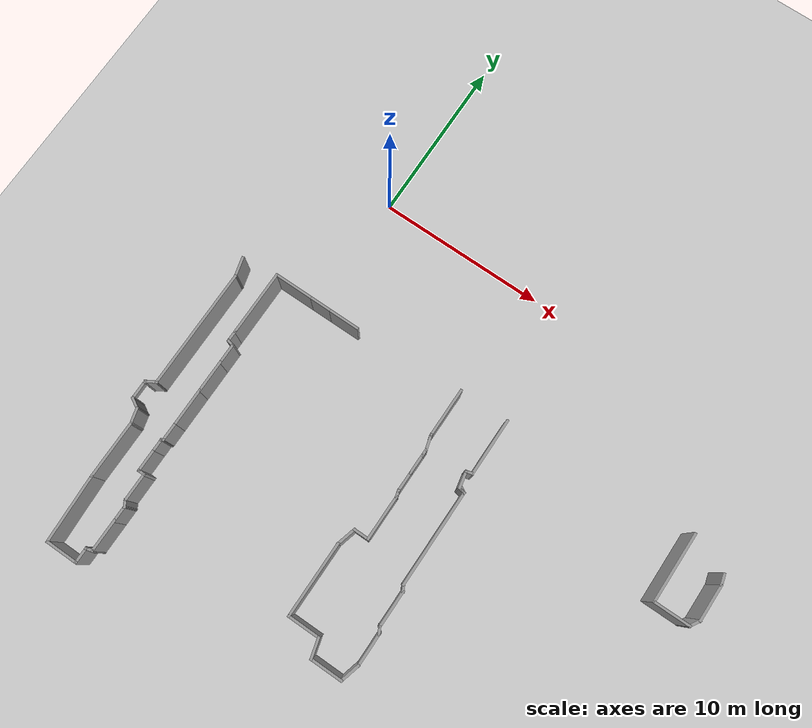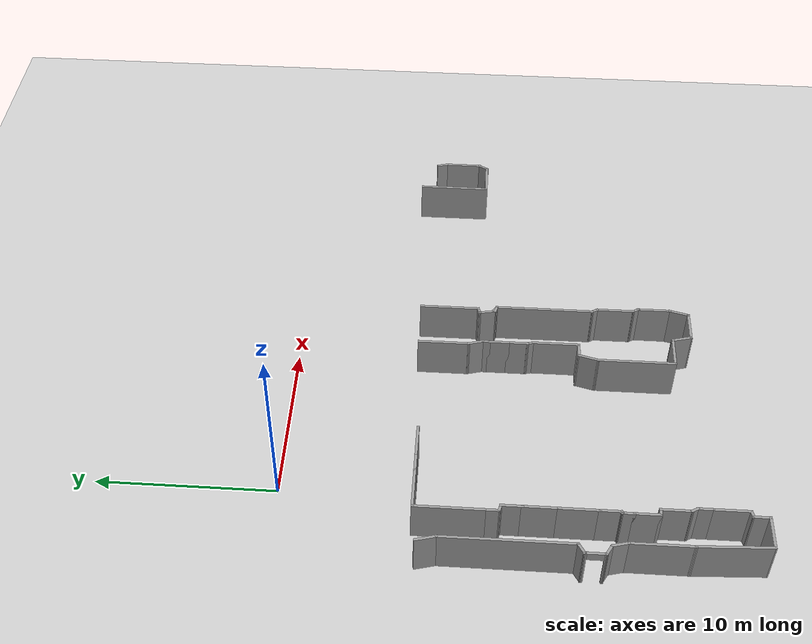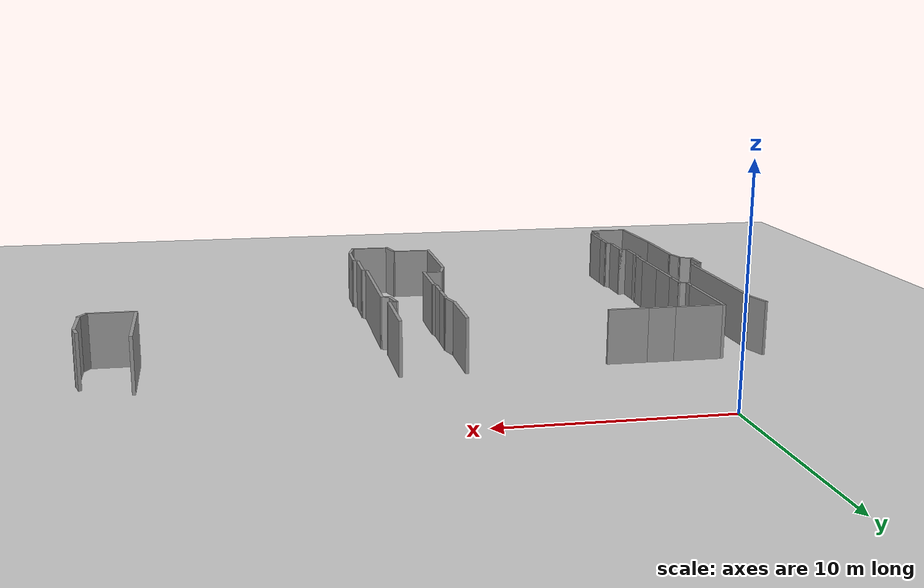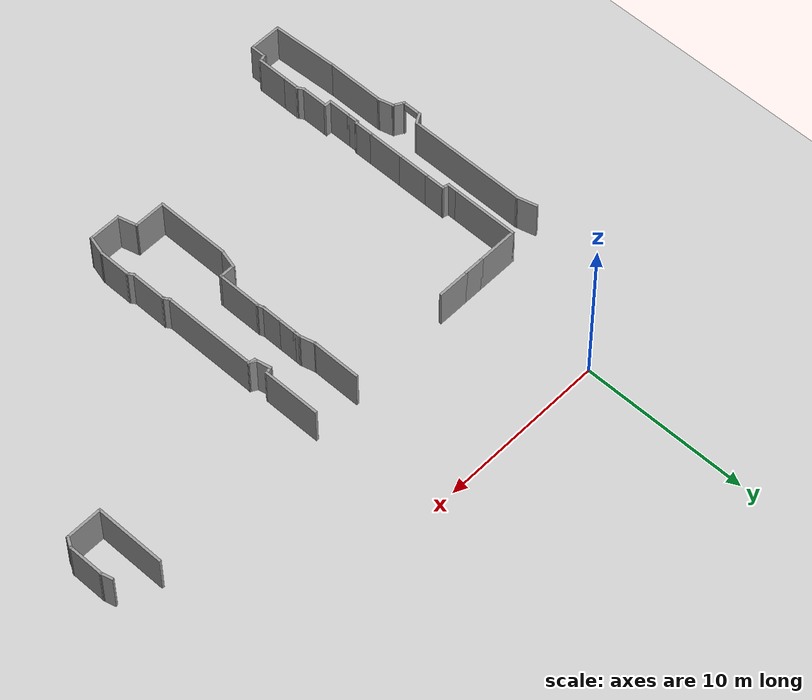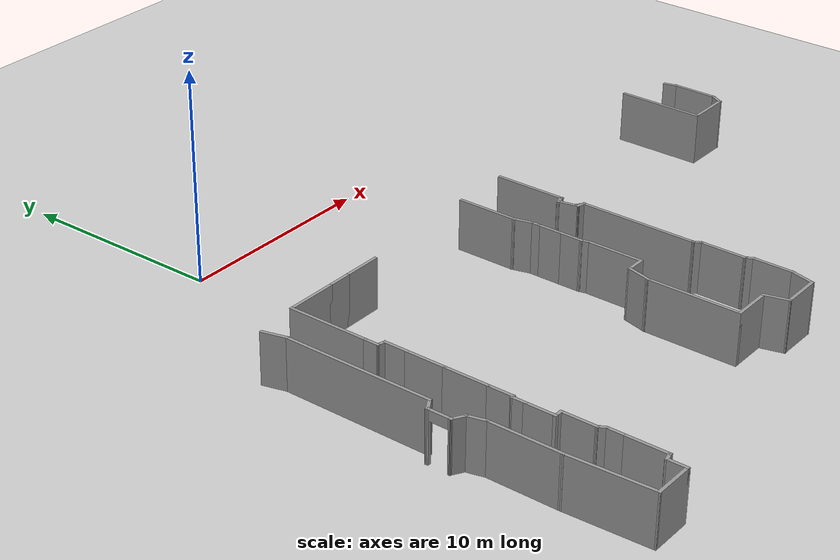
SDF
<sdf version="1.7">
 <world name="default">
  <model name="ground_plane">
   <static>1</static>
   <link name="link">
    <collision name="collision">
     <geometry><plane><normal>0 0 1</normal><size>100 100</size></plane></geometry>
     <surface><friction><ode><mu>100</mu><mu2>50</mu2></ode></friction></surface>
    </collision>
    <visual name="visual">
     <cast_shadows>0</cast_shadows>
     <geometry><plane><normal>0 0 1</normal><size>100 100</size></plane></geometry>
     <material>
      <script><uri>file://media/materials/scripts/gazebo.material</uri><name>Gazebo/Grey</name></script>
     </material>
    </visual>
   </link>
  </model>
  <model name="a10_simulation">
   <pose>8.94312 -0.455858 0 0 -0 0</pose>
   <link name="Wall_0">
    <collision name="Wall_0_Collision">
     <geometry><box><size>2 0.15 2.5</size></box></geometry>
     <pose>0 0 1.25 0 -0 0</pose>
    </collision>
    <visual name="Wall_0_Visual">
     <pose>0 0 1.25 0 -0 0</pose>
     <geometry><box><size>2 0.15 2.5</size></box></geometry>
     <material>
      <script><uri>file://media/materials/scripts/gazebo.material</uri><name>Gazebo/Grey</name></script>
      <ambient>1 1 1 1</ambient>
     </material>
     <meta><layer>0</layer></meta>
    </visual>
    <pose>-11.7781 -25.2008 0 0 -0 0</pose>
   </link>
   <link name="Wall_10">
    <collision name="Wall_10_Collision">
     <geometry><box><size>1.5 0.15 2.5</size></box></geometry>
     <pose>0 0 1.25 0 -0 0</pose>
    </collision>
    <visual name="Wall_10_Visual">
     <pose>0 0 1.25 0 -0 0</pose>
     <geometry><box><size>1.5 0.15 2.5</size></box></geometry>
     <material>
      <script><uri>file://media/materials/scripts/gazebo.material</uri><name>Gazebo/Grey</name></script>
      <ambient>1 1 1 1</ambient>
     </material>
     <meta><layer>0</layer></meta>
    </visual>
    <pose>-11.04 -18.9821 0 0 -0 1.5708</pose>
   </link>
   <link name="Wall_11">
    <collision name="Wall_11_Collision">
     <geometry><box><size>0.75 0.15 2.5</size></box></geometry>
     <pose>0 0 1.25 0 -0 0</pose>
    </collision>
    <visual name="Wall_11_Visual">
     <pose>0 0 1.25 0 -0 0</pose>
     <geometry><box><size>0.75 0.15 2.5</size></box></geometry>
     <material>
      <script><uri>file://media/materials/scripts/gazebo.material</uri><name>Gazebo/Grey</name></script>
      <ambient>1 1 1 1</ambient>
     </material>
     <meta><layer>0</layer></meta>
    </visual>
    <pose>-11.04 -18.0071 0 0 -0 1.5708</pose>
   </link>
   <link name="Wall_12">
    <collision name="Wall_12_Collision">
     <geometry><box><size>0.25 0.15 2.5</size></box></geometry>
     <pose>0 0 1.25 0 -0 0</pose>
    </collision>
    <visual name="Wall_12_Visual">
     <pose>0 0 1.25 0 -0 0</pose>
     <geometry><box><size>0.25 0.15 2.5</size></box></geometry>
     <material>
      <script><uri>file://media/materials/scripts/gazebo.material</uri><name>Gazebo/Grey</name></script>
      <ambient>1 1 1 1</ambient>
     </material>
     <meta><layer>0</layer></meta>
    </visual>
    <pose>-10.9967 -17.6821 0 0 -0 0.523599</pose>
   </link>
   <link name="Wall_13">
    <collision name="Wall_13_Collision">
     <geometry><box><size>1.25 0.15 2.5</size></box></geometry>
     <pose>0 0 1.25 0 -0 0</pose>
    </collision>
    <visual name="Wall_13_Visual">
     <pose>0 0 1.25 0 -0 0</pose>
     <geometry><box><size>1.25 0.15 2.5</size></box></geometry>
     <material>
      <script><uri>file://media/materials/scripts/gazebo.material</uri><name>Gazebo/Grey</name></script>
      <ambient>1 1 1 1</ambient>
     </material>
     <meta><layer>0</layer></meta>
    </visual>
    <pose>-10.9534 -17.1071 0 0 -0 1.5708</pose>
   </link>
   <link name="Wall_14">
    <collision name="Wall_14_Collision">
     <geometry><box><size>2.25 0.15 2.5</size></box></geometry>
     <pose>0 0 1.25 0 -0 0</pose>
    </collision>
    <visual name="Wall_14_Visual">
     <pose>0 0 1.25 0 -0 0</pose>
     <geometry><box><size>2.25 0.15 2.5</size></box></geometry>
     <material>
      <script><uri>file://media/materials/scripts/gazebo.material</uri><name>Gazebo/Grey</name></script>
      <ambient>1 1 1 1</ambient>
     </material>
     <meta><layer>0</layer></meta>
    </visual>
    <pose>-10.9534 -15.5071 0 0 -0 1.5708</pose>
   </link>
   <link name="Wall_16">
    <collision name="Wall_16_Collision">
     <geometry><box><size>2 0.15 2.5</size></box></geometry>
     <pose>0 0 1.25 0 -0 0</pose>
    </collision>
    <visual name="Wall_16_Visual">
     <pose>0 0 1.25 0 -0 0</pose>
     <geometry><box><size>2 0.15 2.5</size></box></geometry>
     <material>
      <script><uri>file://media/materials/scripts/gazebo.material</uri><name>Gazebo/Grey</name></script>
      <ambient>1 1 1 1</ambient>
     </material>
     <meta><layer>0</layer></meta>
    </visual>
    <pose>-10.9534 -13.5321 0 0 -0 1.5708</pose>
   </link>
   <link name="Wall_17">
    <collision name="Wall_17_Collision">
     <geometry><box><size>1.25 0.15 2.5</size></box></geometry>
     <pose>0 0 1.25 0 -0 0</pose>
    </collision>
    <visual name="Wall_17_Visual">
     <pose>0 0 1.25 0 -0 0</pose>
     <geometry><box><size>1.25 0.15 2.5</size></box></geometry>
     <material>
      <script><uri>file://media/materials/scripts/gazebo.material</uri><name>Gazebo/Grey</name></script>
      <ambient>1 1 1 1</ambient>
     </material>
     <meta><layer>0</layer></meta>
    </visual>
    <pose>-10.9534 -12.0571 0 0 -0 1.5708</pose>
   </link>
   <link name="Wall_179">
    <collision name="Wall_179_Collision">
     <geometry><box><size>1.25 0.15 2.5</size></box></geometry>
     <pose>0 0 1.25 0 -0 0</pose>
    </collision>
    <visual name="Wall_179_Visual">
     <pose>0 0 1.25 0 -0 0</pose>
     <geometry><box><size>1.25 0.15 2.5</size></box></geometry>
     <material>
      <script><uri>file://media/materials/scripts/gazebo.material</uri><name>Gazebo/Grey</name></script>
      <ambient>1 1 1 1</ambient>
     </material>
     <meta><layer>0</layer></meta>
    </visual>
    <pose>-13.2533 -7.7619 0 0 -0 -1.309</pose>
   </link>
   <link name="Wall_18">
    <collision name="Wall_18_Collision">
     <geometry><box><size>0.5 0.15 2.5</size></box></geometry>
     <pose>0 0 1.25 0 -0 0</pose>
    </collision>
    <visual name="Wall_18_Visual">
     <pose>0 0 1.25 0 -0 0</pose>
     <geometry><box><size>0.5 0.15 2.5</size></box></geometry>
     <material>
      <script><uri>file://media/materials/scripts/gazebo.material</uri><name>Gazebo/Grey</name></script>
      <ambient>1 1 1 1</ambient>
     </material>
     <meta><layer>0</layer></meta>
    </visual>
    <pose>-11.1225 -11.4618 0 0 -0 2.87979</pose>
   </link>
   <link name="Wall_180">
    <collision name="Wall_180_Collision">
     <geometry><box><size>7.25 0.15 2.5</size></box></geometry>
     <pose>0 0 1.25 0 -0 0</pose>
    </collision>
    <visual name="Wall_180_Visual">
     <pose>0 0 1.25 0 -0 0</pose>
     <geometry><box><size>7.25 0.15 2.5</size></box></geometry>
     <material>
      <script><uri>file://media/materials/scripts/gazebo.material</uri><name>Gazebo/Grey</name></script>
      <ambient>1 1 1 1</ambient>
     </material>
     <meta><layer>0</layer></meta>
    </visual>
    <pose>-13.1109 -11.8432 0 0 -0 -1.5708</pose>
   </link>
   <link name="Wall_181">
    <collision name="Wall_181_Collision">
     <geometry><box><size>0.75 0.15 2.5</size></box></geometry>
     <pose>0 0 1.25 0 -0 0</pose>
    </collision>
    <visual name="Wall_181_Visual">
     <pose>0 0 1.25 0 -0 0</pose>
     <geometry><box><size>0.75 0.15 2.5</size></box></geometry>
     <material>
      <script><uri>file://media/materials/scripts/gazebo.material</uri><name>Gazebo/Grey</name></script>
      <ambient>1 1 1 1</ambient>
     </material>
     <meta><layer>0</layer></meta>
    </visual>
    <pose>-13.3708 -15.5432 0 0 -0 -2.61799</pose>
   </link>
   <link name="Wall_182">
    <pose>-13.6306 -16.2432 0 0 -0 -1.5708</pose>
    <visual name="Wall_182_Visual_0">
     <pose>-0.531769 0 1.25 0 -0 0</pose>
     <geometry><box><size>0.186461 0.15 2.5</size></box></geometry>
     <material>
      <script><uri>file://media/materials/scripts/gazebo.material</uri><name>Gazebo/Grey</name></script>
      <ambient>1 1 1 1</ambient>
     </material>
     <meta><layer>0</layer></meta>
    </visual>
    <collision name="Wall_182_Collision_0">
     <geometry><box><size>0.186461 0.15 2.5</size></box></geometry>
     <pose>-0.531769 0 1.25 0 -0 0</pose>
    </collision>
    <visual name="Wall_182_Visual_1">
     <pose>0.543231 0 1.25 0 -0 0</pose>
     <geometry><box><size>0.163539 0.15 2.5</size></box></geometry>
     <material>
      <script><uri>file://media/materials/scripts/gazebo.material</uri><name>Gazebo/Grey</name></script>
      <ambient>1 1 1 1</ambient>
     </material>
     <meta><layer>0</layer></meta>
    </visual>
    <collision name="Wall_182_Collision_1">
     <geometry><box><size>0.163539 0.15 2.5</size></box></geometry>
     <pose>0.543231 0 1.25 0 -0 0</pose>
    </collision>
    <visual name="Wall_182_Visual_2">
     <pose>0.011461 0 2.25 0 -0 0</pose>
     <geometry><box><size>0.9 0.15 0.5</size></box></geometry>
     <material>
      <script><uri>file://media/materials/scripts/gazebo.material</uri><name>Gazebo/Grey</name></script>
      <ambient>1 1 1 1</ambient>
     </material>
     <meta><layer>0</layer></meta>
    </visual>
    <collision name="Wall_182_Collision_2">
     <geometry><box><size>0.9 0.15 0.5</size></box></geometry>
     <pose>0.011461 0 2.25 0 -0 0</pose>
    </collision>
   </link>
   <link name="Wall_183">
    <collision name="Wall_183_Collision">
     <geometry><box><size>0.75 0.15 2.5</size></box></geometry>
     <pose>0 0 1.25 0 -0 0</pose>
    </collision>
    <visual name="Wall_183_Visual">
     <pose>0 0 1.25 0 -0 0</pose>
     <geometry><box><size>0.75 0.15 2.5</size></box></geometry>
     <material>
      <script><uri>file://media/materials/scripts/gazebo.material</uri><name>Gazebo/Grey</name></script>
      <ambient>1 1 1 1</ambient>
     </material>
     <meta><layer>0</layer></meta>
    </visual>
    <pose>-13.3708 -16.9432 0 0 -0 -0.523599</pose>
   </link>
   <link name="Wall_185">
    <collision name="Wall_185_Collision">
     <geometry><box><size>1 0.15 2.5</size></box></geometry>
     <pose>0 0 1.25 0 -0 0</pose>
    </collision>
    <visual name="Wall_185_Visual">
     <pose>0 0 1.25 0 -0 0</pose>
     <geometry><box><size>1 0.15 2.5</size></box></geometry>
     <material>
      <script><uri>file://media/materials/scripts/gazebo.material</uri><name>Gazebo/Grey</name></script>
      <ambient>1 1 1 1</ambient>
     </material>
     <meta><layer>0</layer></meta>
    </visual>
    <pose>-13.0009 -17.5037 0 0 -0 -1.309</pose>
   </link>
   <link name="Wall_186">
    <collision name="Wall_186_Collision">
     <geometry><box><size>3.5 0.15 2.5</size></box></geometry>
     <pose>0 0 1.25 0 -0 0</pose>
    </collision>
    <visual name="Wall_186_Visual">
     <pose>0 0 1.25 0 -0 0</pose>
     <geometry><box><size>3.5 0.15 2.5</size></box></geometry>
     <material>
      <script><uri>file://media/materials/scripts/gazebo.material</uri><name>Gazebo/Grey</name></script>
      <ambient>1 1 1 1</ambient>
     </material>
     <meta><layer>0</layer></meta>
    </visual>
    <pose>-12.8909 -19.5892 0 0 -0 -1.5708</pose>
   </link>
   <link name="Wall_187">
    <collision name="Wall_187_Collision">
     <geometry><box><size>4.09106 0.15 2.5</size></box></geometry>
     <pose>0 0 1.25 0 -0 0</pose>
    </collision>
    <visual name="Wall_187_Visual">
     <pose>0 0 1.25 0 -0 0</pose>
     <geometry><box><size>4.09106 0.15 2.5</size></box></geometry>
     <material>
      <script><uri>file://media/materials/scripts/gazebo.material</uri><name>Gazebo/Grey</name></script>
      <ambient>1 1 1 1</ambient>
     </material>
     <meta><layer>0</layer></meta>
    </visual>
    <pose>-12.797 -23.2325 0 0 -0 -1.52312</pose>
   </link>
   <link name="Wall_188">
    <collision name="Wall_188_Collision">
     <geometry><box><size>2 0.15 2.5</size></box></geometry>
     <pose>0 0 1.25 0 -0 0</pose>
    </collision>
    <visual name="Wall_188_Visual">
     <pose>0 0 1.25 0 -0 0</pose>
     <geometry><box><size>2 0.15 2.5</size></box></geometry>
     <material>
      <script><uri>file://media/materials/scripts/gazebo.material</uri><name>Gazebo/Grey</name></script>
      <ambient>1 1 1 1</ambient>
     </material>
     <meta><layer>0</layer></meta>
    </visual>
    <pose>-11.7781 -25.2008 0 0 -0 0</pose>
   </link>
   <link name="Wall_19">
    <collision name="Wall_19_Collision">
     <geometry><box><size>0.75 0.15 2.5</size></box></geometry>
     <pose>0 0 1.25 0 -0 0</pose>
    </collision>
    <visual name="Wall_19_Visual">
     <pose>0 0 1.25 0 -0 0</pose>
     <geometry><box><size>0.75 0.15 2.5</size></box></geometry>
     <material>
      <script><uri>file://media/materials/scripts/gazebo.material</uri><name>Gazebo/Grey</name></script>
      <ambient>1 1 1 1</ambient>
     </material>
     <meta><layer>0</layer></meta>
    </visual>
    <pose>-11.2915 -11.1165 0 0 -0 1.5708</pose>
   </link>
   <link name="Wall_2">
    <collision name="Wall_2_Collision">
     <geometry><box><size>1 0.15 2.5</size></box></geometry>
     <pose>0 0 1.25 0 -0 0</pose>
    </collision>
    <visual name="Wall_2_Visual">
     <pose>0 0 1.25 0 -0 0</pose>
     <geometry><box><size>1 0.15 2.5</size></box></geometry>
     <material>
      <script><uri>file://media/materials/scripts/gazebo.material</uri><name>Gazebo/Grey</name></script>
      <ambient>1 1 1 1</ambient>
     </material>
     <meta><layer>0</layer></meta>
    </visual>
    <pose>-10.8531 -24.7758 0 0 -0 1.5708</pose>
   </link>
   <link name="Wall_20">
    <collision name="Wall_20_Collision">
     <geometry><box><size>0.15 0.15 2.5</size></box></geometry>
     <pose>0 0 1.25 0 -0 0</pose>
    </collision>
    <visual name="Wall_20_Visual">
     <pose>0 0 1.25 0 -0 0</pose>
     <geometry><box><size>0.15 0.15 2.5</size></box></geometry>
     <material>
      <script><uri>file://media/materials/scripts/gazebo.material</uri><name>Gazebo/Grey</name></script>
      <ambient>1 1 1 1</ambient>
     </material>
     <meta><layer>0</layer></meta>
    </visual>
    <pose>-11.2915 -10.8165 0 0 -0 0</pose>
   </link>
   <link name="Wall_21">
    <collision name="Wall_21_Collision">
     <geometry><box><size>0.15 0.15 2.5</size></box></geometry>
     <pose>0 0 1.25 0 -0 0</pose>
    </collision>
    <visual name="Wall_21_Visual">
     <pose>0 0 1.25 0 -0 0</pose>
     <geometry><box><size>0.15 0.15 2.5</size></box></geometry>
     <material>
      <script><uri>file://media/materials/scripts/gazebo.material</uri><name>Gazebo/Grey</name></script>
      <ambient>1 1 1 1</ambient>
     </material>
     <meta><layer>0</layer></meta>
    </visual>
    <pose>-11.2915 -10.8165 0 0 -0 0</pose>
   </link>
   <link name="Wall_22">
    <collision name="Wall_22_Collision">
     <geometry><box><size>4 0.15 2.5</size></box></geometry>
     <pose>0 0 1.25 0 -0 0</pose>
    </collision>
    <visual name="Wall_22_Visual">
     <pose>0 0 1.25 0 -0 0</pose>
     <geometry><box><size>4 0.15 2.5</size></box></geometry>
     <material>
      <script><uri>file://media/materials/scripts/gazebo.material</uri><name>Gazebo/Grey</name></script>
      <ambient>1 1 1 1</ambient>
     </material>
     <meta><layer>0</layer></meta>
    </visual>
    <pose>-11.2915 -8.8915 0 0 -0 1.5708</pose>
   </link>
   <link name="Wall_23">
    <collision name="Wall_23_Collision">
     <geometry><box><size>2.5 0.15 2.5</size></box></geometry>
     <pose>0 0 1.25 0 -0 0</pose>
    </collision>
    <visual name="Wall_23_Visual">
     <pose>0 0 1.25 0 -0 0</pose>
     <geometry><box><size>2.5 0.15 2.5</size></box></geometry>
     <material>
      <script><uri>file://media/materials/scripts/gazebo.material</uri><name>Gazebo/Grey</name></script>
      <ambient>1 1 1 1</ambient>
     </material>
     <meta><layer>0</layer></meta>
    </visual>
    <pose>-10.1165 -6.9665 0 0 -0 0</pose>
   </link>
   <link name="Wall_24">
    <collision name="Wall_24_Collision">
     <geometry><box><size>1.25 0.15 2.5</size></box></geometry>
     <pose>0 0 1.25 0 -0 0</pose>
    </collision>
    <visual name="Wall_24_Visual">
     <pose>0 0 1.25 0 -0 0</pose>
     <geometry><box><size>1.25 0.15 2.5</size></box></geometry>
     <material>
      <script><uri>file://media/materials/scripts/gazebo.material</uri><name>Gazebo/Grey</name></script>
      <ambient>1 1 1 1</ambient>
     </material>
     <meta><layer>0</layer></meta>
    </visual>
    <pose>-8.39152 -6.9665 0 0 -0 0</pose>
   </link>
   <link name="Wall_25">
    <collision name="Wall_25_Collision">
     <geometry><box><size>2 0.15 2.5</size></box></geometry>
     <pose>0 0 1.25 0 -0 0</pose>
    </collision>
    <visual name="Wall_25_Visual">
     <pose>0 0 1.25 0 -0 0</pose>
     <geometry><box><size>2 0.15 2.5</size></box></geometry>
     <material>
      <script><uri>file://media/materials/scripts/gazebo.material</uri><name>Gazebo/Grey</name></script>
      <ambient>1 1 1 1</ambient>
     </material>
     <meta><layer>0</layer></meta>
    </visual>
    <pose>-6.91652 -6.9665 0 0 -0 0</pose>
   </link>
   <link name="Wall_3">
    <collision name="Wall_3_Collision">
     <geometry><box><size>0.5 0.15 2.5</size></box></geometry>
     <pose>0 0 1.25 0 -0 0</pose>
    </collision>
    <visual name="Wall_3_Visual">
     <pose>0 0 1.25 0 -0 0</pose>
     <geometry><box><size>0.5 0.15 2.5</size></box></geometry>
     <material>
      <script><uri>file://media/materials/scripts/gazebo.material</uri><name>Gazebo/Grey</name></script>
      <ambient>1 1 1 1</ambient>
     </material>
     <meta><layer>0</layer></meta>
    </visual>
    <pose>-10.6841 -24.3055 0 0 -0 0.261799</pose>
   </link>
   <link name="Wall_34">
    <collision name="Wall_34_Collision">
     <geometry><box><size>3 0.15 2.5</size></box></geometry>
     <pose>0 0 1.25 0 -0 0</pose>
    </collision>
    <visual name="Wall_34_Visual">
     <pose>0 0 1.25 0 -0 0</pose>
     <geometry><box><size>3 0.15 2.5</size></box></geometry>
     <material>
      <script><uri>file://media/materials/scripts/gazebo.material</uri><name>Gazebo/Grey</name></script>
      <ambient>1 1 1 1</ambient>
     </material>
     <meta><layer>0</layer></meta>
    </visual>
    <pose>0.499903 -8.07188 0 0 -0 -1.5708</pose>
   </link>
   <link name="Wall_35">
    <collision name="Wall_35_Collision">
     <geometry><box><size>0.15 0.15 2.5</size></box></geometry>
     <pose>0 0 1.25 0 -0 0</pose>
    </collision>
    <visual name="Wall_35_Visual">
     <pose>0 0 1.25 0 -0 0</pose>
     <geometry><box><size>0.15 0.15 2.5</size></box></geometry>
     <material>
      <script><uri>file://media/materials/scripts/gazebo.material</uri><name>Gazebo/Grey</name></script>
      <ambient>1 1 1 1</ambient>
     </material>
     <meta><layer>0</layer></meta>
    </visual>
    <pose>0.499903 -9.49688 0 0 -0 0</pose>
   </link>
   <link name="Wall_36">
    <collision name="Wall_36_Collision">
     <geometry><box><size>0.15 0.15 2.5</size></box></geometry>
     <pose>0 0 1.25 0 -0 0</pose>
    </collision>
    <visual name="Wall_36_Visual">
     <pose>0 0 1.25 0 -0 0</pose>
     <geometry><box><size>0.15 0.15 2.5</size></box></geometry>
     <material>
      <script><uri>file://media/materials/scripts/gazebo.material</uri><name>Gazebo/Grey</name></script>
      <ambient>1 1 1 1</ambient>
     </material>
     <meta><layer>0</layer></meta>
    </visual>
    <pose>0.499903 -9.49688 0 0 -0 0</pose>
   </link>
   <link name="Wall_39">
    <collision name="Wall_39_Collision">
     <geometry><box><size>1 0.15 2.5</size></box></geometry>
     <pose>0 0 1.25 0 -0 0</pose>
    </collision>
    <visual name="Wall_39_Visual">
     <pose>0 0 1.25 0 -0 0</pose>
     <geometry><box><size>1 0.15 2.5</size></box></geometry>
     <material>
      <script><uri>file://media/materials/scripts/gazebo.material</uri><name>Gazebo/Grey</name></script>
      <ambient>1 1 1 1</ambient>
     </material>
     <meta><layer>0</layer></meta>
    </visual>
    <pose>0.609901 -9.9074 0 0 -0 -1.309</pose>
   </link>
   <link name="Wall_4">
    <collision name="Wall_4_Collision">
     <geometry><box><size>2 0.15 2.5</size></box></geometry>
     <pose>0 0 1.25 0 -0 0</pose>
    </collision>
    <visual name="Wall_4_Visual">
     <pose>0 0 1.25 0 -0 0</pose>
     <geometry><box><size>2 0.15 2.5</size></box></geometry>
     <material>
      <script><uri>file://media/materials/scripts/gazebo.material</uri><name>Gazebo/Grey</name></script>
      <ambient>1 1 1 1</ambient>
     </material>
     <meta><layer>0</layer></meta>
    </visual>
    <pose>-10.515 -23.3352 0 0 -0 1.5708</pose>
   </link>
   <link name="Wall_40">
    <collision name="Wall_40_Collision">
     <geometry><box><size>0.5 0.15 2.5</size></box></geometry>
     <pose>0 0 1.25 0 -0 0</pose>
    </collision>
    <visual name="Wall_40_Visual">
     <pose>0 0 1.25 0 -0 0</pose>
     <geometry><box><size>0.5 0.15 2.5</size></box></geometry>
     <material>
      <script><uri>file://media/materials/scripts/gazebo.material</uri><name>Gazebo/Grey</name></script>
      <ambient>1 1 1 1</ambient>
     </material>
     <meta><layer>0</layer></meta>
    </visual>
    <pose>0.7199 -10.4929 0 0 -0 -1.5708</pose>
   </link>
   <link name="Wall_41">
    <collision name="Wall_41_Collision">
     <geometry><box><size>1.25 0.15 2.5</size></box></geometry>
     <pose>0 0 1.25 0 -0 0</pose>
    </collision>
    <visual name="Wall_41_Visual">
     <pose>0 0 1.25 0 -0 0</pose>
     <geometry><box><size>1.25 0.15 2.5</size></box></geometry>
     <material>
      <script><uri>file://media/materials/scripts/gazebo.material</uri><name>Gazebo/Grey</name></script>
      <ambient>1 1 1 1</ambient>
     </material>
     <meta><layer>0</layer></meta>
    </visual>
    <pose>0.7199 -11.2179 0 0 -0 -1.5708</pose>
   </link>
   <link name="Wall_42">
    <collision name="Wall_42_Collision">
     <geometry><box><size>1.25 0.15 2.5</size></box></geometry>
     <pose>0 0 1.25 0 -0 0</pose>
    </collision>
    <visual name="Wall_42_Visual">
     <pose>0 0 1.25 0 -0 0</pose>
     <geometry><box><size>1.25 0.15 2.5</size></box></geometry>
     <material>
      <script><uri>file://media/materials/scripts/gazebo.material</uri><name>Gazebo/Grey</name></script>
      <ambient>1 1 1 1</ambient>
     </material>
     <meta><layer>0</layer></meta>
    </visual>
    <pose>0.7199 -12.3179 0 0 -0 -1.5708</pose>
   </link>
   <link name="Wall_44">
    <collision name="Wall_44_Collision">
     <geometry><box><size>0.5 0.15 2.5</size></box></geometry>
     <pose>0 0 1.25 0 -0 0</pose>
    </collision>
    <visual name="Wall_44_Visual">
     <pose>0 0 1.25 0 -0 0</pose>
     <geometry><box><size>0.5 0.15 2.5</size></box></geometry>
     <material>
      <script><uri>file://media/materials/scripts/gazebo.material</uri><name>Gazebo/Grey</name></script>
      <ambient>1 1 1 1</ambient>
     </material>
     <meta><layer>0</layer></meta>
    </visual>
    <pose>0.765193 -13.037 0 0 -0 -1.309</pose>
   </link>
   <link name="Wall_45">
    <collision name="Wall_45_Collision">
     <geometry><box><size>2.75 0.15 2.5</size></box></geometry>
     <pose>0 0 1.25 0 -0 0</pose>
    </collision>
    <visual name="Wall_45_Visual">
     <pose>0 0 1.25 0 -0 0</pose>
     <geometry><box><size>2.75 0.15 2.5</size></box></geometry>
     <material>
      <script><uri>file://media/materials/scripts/gazebo.material</uri><name>Gazebo/Grey</name></script>
      <ambient>1 1 1 1</ambient>
     </material>
     <meta><layer>0</layer></meta>
    </visual>
    <pose>0.810486 -14.506 0 0 -0 -1.5708</pose>
   </link>
   <link name="Wall_46">
    <collision name="Wall_46_Collision">
     <geometry><box><size>1 0.15 2.5</size></box></geometry>
     <pose>0 0 1.25 0 -0 0</pose>
    </collision>
    <visual name="Wall_46_Visual">
     <pose>0 0 1.25 0 -0 0</pose>
     <geometry><box><size>1 0.15 2.5</size></box></geometry>
     <material>
      <script><uri>file://media/materials/scripts/gazebo.material</uri><name>Gazebo/Grey</name></script>
      <ambient>1 1 1 1</ambient>
     </material>
     <meta><layer>0</layer></meta>
    </visual>
    <pose>0.385486 -15.806 0 0 -0 3.14159</pose>
   </link>
   <link name="Wall_47">
    <collision name="Wall_47_Collision">
     <geometry><box><size>1.25 0.15 2.5</size></box></geometry>
     <pose>0 0 1.25 0 -0 0</pose>
    </collision>
    <visual name="Wall_47_Visual">
     <pose>0 0 1.25 0 -0 0</pose>
     <geometry><box><size>1.25 0.15 2.5</size></box></geometry>
     <material>
      <script><uri>file://media/materials/scripts/gazebo.material</uri><name>Gazebo/Grey</name></script>
      <ambient>1 1 1 1</ambient>
     </material>
     <meta><layer>0</layer></meta>
    </visual>
    <pose>-0.181864 -16.3373 0 0 -0 -1.8326</pose>
   </link>
   <link name="Wall_48">
    <collision name="Wall_48_Collision">
     <geometry><box><size>4.5 0.15 2.5</size></box></geometry>
     <pose>0 0 1.25 0 -0 0</pose>
    </collision>
    <visual name="Wall_48_Visual">
     <pose>0 0 1.25 0 -0 0</pose>
     <geometry><box><size>4.5 0.15 2.5</size></box></geometry>
     <material>
      <script><uri>file://media/materials/scripts/gazebo.material</uri><name>Gazebo/Grey</name></script>
      <ambient>1 1 1 1</ambient>
     </material>
     <meta><layer>0</layer></meta>
    </visual>
    <pose>-0.324215 -19.0435 0 0 -0 -1.5708</pose>
   </link>
   <link name="Wall_49">
    <collision name="Wall_49_Collision">
     <geometry><box><size>2 0.15 2.5</size></box></geometry>
     <pose>0 0 1.25 0 -0 0</pose>
    </collision>
    <visual name="Wall_49_Visual">
     <pose>0 0 1.25 0 -0 0</pose>
     <geometry><box><size>2 0.15 2.5</size></box></geometry>
     <material>
      <script><uri>file://media/materials/scripts/gazebo.material</uri><name>Gazebo/Grey</name></script>
      <ambient>1 1 1 1</ambient>
     </material>
     <meta><layer>0</layer></meta>
    </visual>
    <pose>0.600785 -21.2185 0 0 -0 0</pose>
   </link>
   <link name="Wall_50">
    <collision name="Wall_50_Collision">
     <geometry><box><size>1.25 0.15 2.5</size></box></geometry>
     <pose>0 0 1.25 0 -0 0</pose>
    </collision>
    <visual name="Wall_50_Visual">
     <pose>0 0 1.25 0 -0 0</pose>
     <geometry><box><size>1.25 0.15 2.5</size></box></geometry>
     <material>
      <script><uri>file://media/materials/scripts/gazebo.material</uri><name>Gazebo/Grey</name></script>
      <ambient>1 1 1 1</ambient>
     </material>
     <meta><layer>0</layer></meta>
    </visual>
    <pose>1.66813 -21.7498 0 0 -0 -1.309</pose>
   </link>
   <link name="Wall_51">
    <collision name="Wall_51_Collision">
     <geometry><box><size>2 0.15 2.5</size></box></geometry>
     <pose>0 0 1.25 0 -0 0</pose>
    </collision>
    <visual name="Wall_51_Visual">
     <pose>0 0 1.25 0 -0 0</pose>
     <geometry><box><size>2 0.15 2.5</size></box></geometry>
     <material>
      <script><uri>file://media/materials/scripts/gazebo.material</uri><name>Gazebo/Grey</name></script>
      <ambient>1 1 1 1</ambient>
     </material>
     <meta><layer>0</layer></meta>
    </visual>
    <pose>2.73549 -22.281 0 0 -0 0</pose>
   </link>
   <link name="Wall_52">
    <collision name="Wall_52_Collision">
     <geometry><box><size>1.25 0.15 2.5</size></box></geometry>
     <pose>0 0 1.25 0 -0 0</pose>
    </collision>
    <visual name="Wall_52_Visual">
     <pose>0 0 1.25 0 -0 0</pose>
     <geometry><box><size>1.25 0.15 2.5</size></box></geometry>
     <material>
      <script><uri>file://media/materials/scripts/gazebo.material</uri><name>Gazebo/Grey</name></script>
      <ambient>1 1 1 1</ambient>
     </material>
     <meta><layer>0</layer></meta>
    </visual>
    <pose>3.80284 -21.7498 0 0 -0 1.309</pose>
   </link>
   <link name="Wall_53">
    <collision name="Wall_53_Collision">
     <geometry><box><size>2 0.15 2.5</size></box></geometry>
     <pose>0 0 1.25 0 -0 0</pose>
    </collision>
    <visual name="Wall_53_Visual">
     <pose>0 0 1.25 0 -0 0</pose>
     <geometry><box><size>2 0.15 2.5</size></box></geometry>
     <material>
      <script><uri>file://media/materials/scripts/gazebo.material</uri><name>Gazebo/Grey</name></script>
      <ambient>1 1 1 1</ambient>
     </material>
     <meta><layer>0</layer></meta>
    </visual>
    <pose>3.94519 -20.2935 0 0 -0 1.5708</pose>
   </link>
   <link name="Wall_54">
    <collision name="Wall_54_Collision">
     <geometry><box><size>0.5 0.15 2.5</size></box></geometry>
     <pose>0 0 1.25 0 -0 0</pose>
    </collision>
    <visual name="Wall_54_Visual">
     <pose>0 0 1.25 0 -0 0</pose>
     <geometry><box><size>0.5 0.15 2.5</size></box></geometry>
     <material>
      <script><uri>file://media/materials/scripts/gazebo.material</uri><name>Gazebo/Grey</name></script>
      <ambient>1 1 1 1</ambient>
     </material>
     <meta><layer>0</layer></meta>
    </visual>
    <pose>3.85769 -19.217 0 0 -0 2.0944</pose>
   </link>
   <link name="Wall_55">
    <collision name="Wall_55_Collision">
     <geometry><box><size>2.25 0.15 2.5</size></box></geometry>
     <pose>0 0 1.25 0 -0 0</pose>
    </collision>
    <visual name="Wall_55_Visual">
     <pose>0 0 1.25 0 -0 0</pose>
     <geometry><box><size>2.25 0.15 2.5</size></box></geometry>
     <material>
      <script><uri>file://media/materials/scripts/gazebo.material</uri><name>Gazebo/Grey</name></script>
      <ambient>1 1 1 1</ambient>
     </material>
     <meta><layer>0</layer></meta>
    </visual>
    <pose>3.77019 -18.0154 0 0 -0 1.5708</pose>
   </link>
   <link name="Wall_56">
    <collision name="Wall_56_Collision">
     <geometry><box><size>0.5 0.15 2.5</size></box></geometry>
     <pose>0 0 1.25 0 -0 0</pose>
    </collision>
    <visual name="Wall_56_Visual">
     <pose>0 0 1.25 0 -0 0</pose>
     <geometry><box><size>0.5 0.15 2.5</size></box></geometry>
     <material>
      <script><uri>file://media/materials/scripts/gazebo.material</uri><name>Gazebo/Grey</name></script>
      <ambient>1 1 1 1</ambient>
     </material>
     <meta><layer>0</layer></meta>
    </visual>
    <pose>3.68269 -16.8138 0 0 -0 2.0944</pose>
   </link>
   <link name="Wall_57">
    <collision name="Wall_57_Collision">
     <geometry><box><size>5.75 0.15 2.5</size></box></geometry>
     <pose>0 0 1.25 0 -0 0</pose>
    </collision>
    <visual name="Wall_57_Visual">
     <pose>0 0 1.25 0 -0 0</pose>
     <geometry><box><size>5.75 0.15 2.5</size></box></geometry>
     <material>
      <script><uri>file://media/materials/scripts/gazebo.material</uri><name>Gazebo/Grey</name></script>
      <ambient>1 1 1 1</ambient>
     </material>
     <meta><layer>0</layer></meta>
    </visual>
    <pose>3.59519 -13.8623 0 0 -0 1.5708</pose>
   </link>
   <link name="Wall_58">
    <collision name="Wall_58_Collision">
     <geometry><box><size>0.5 0.15 2.5</size></box></geometry>
     <pose>0 0 1.25 0 -0 0</pose>
    </collision>
    <visual name="Wall_58_Visual">
     <pose>0 0 1.25 0 -0 0</pose>
     <geometry><box><size>0.5 0.15 2.5</size></box></geometry>
     <material>
      <script><uri>file://media/materials/scripts/gazebo.material</uri><name>Gazebo/Grey</name></script>
      <ambient>1 1 1 1</ambient>
     </material>
     <meta><layer>0</layer></meta>
    </visual>
    <pose>3.44363 -10.9748 0 0 -0 2.61799</pose>
   </link>
   <link name="Wall_6">
    <collision name="Wall_6_Collision">
     <geometry><box><size>1 0.15 2.5</size></box></geometry>
     <pose>0 0 1.25 0 -0 0</pose>
    </collision>
    <visual name="Wall_6_Visual">
     <pose>0 0 1.25 0 -0 0</pose>
     <geometry><box><size>1 0.15 2.5</size></box></geometry>
     <material>
      <script><uri>file://media/materials/scripts/gazebo.material</uri><name>Gazebo/Grey</name></script>
      <ambient>1 1 1 1</ambient>
     </material>
     <meta><layer>0</layer></meta>
    </visual>
    <pose>-10.515 -21.9852 0 0 -0 1.5708</pose>
   </link>
   <link name="Wall_60">
    <collision name="Wall_60_Collision">
     <geometry><box><size>0.15 0.15 2.5</size></box></geometry>
     <pose>0 0 1.25 0 -0 0</pose>
    </collision>
    <visual name="Wall_60_Visual">
     <pose>0 0 1.25 0 -0 0</pose>
     <geometry><box><size>0.15 0.15 2.5</size></box></geometry>
     <material>
      <script><uri>file://media/materials/scripts/gazebo.material</uri><name>Gazebo/Grey</name></script>
      <ambient>1 1 1 1</ambient>
     </material>
     <meta><layer>0</layer></meta>
    </visual>
    <pose>3.07208 -10.0663 0 0 -0 0</pose>
   </link>
   <link name="Wall_62">
    <collision name="Wall_62_Collision">
     <geometry><box><size>0.5 0.15 2.5</size></box></geometry>
     <pose>0 0 1.25 0 -0 0</pose>
    </collision>
    <visual name="Wall_62_Visual">
     <pose>0 0 1.25 0 -0 0</pose>
     <geometry><box><size>0.5 0.15 2.5</size></box></geometry>
     <material>
      <script><uri>file://media/materials/scripts/gazebo.material</uri><name>Gazebo/Grey</name></script>
      <ambient>1 1 1 1</ambient>
     </material>
     <meta><layer>0</layer></meta>
    </visual>
    <pose>3.42615 -11.017 0 0 -0 2.87979</pose>
   </link>
   <link name="Wall_63">
    <collision name="Wall_63_Collision">
     <geometry><box><size>1.07416 0.15 2.5</size></box></geometry>
     <pose>0 0 1.25 0 -0 0</pose>
    </collision>
    <visual name="Wall_63_Visual">
     <pose>0 0 1.25 0 -0 0</pose>
     <geometry><box><size>1.07416 0.15 2.5</size></box></geometry>
     <material>
      <script><uri>file://media/materials/scripts/gazebo.material</uri><name>Gazebo/Grey</name></script>
      <ambient>1 1 1 1</ambient>
     </material>
     <meta><layer>0</layer></meta>
    </visual>
    <pose>3.1646 -10.519 0 0 -0 1.77237</pose>
   </link>
   <link name="Wall_64">
    <collision name="Wall_64_Collision">
     <geometry><box><size>0.5 0.15 2.5</size></box></geometry>
     <pose>0 0 1.25 0 -0 0</pose>
    </collision>
    <visual name="Wall_64_Visual">
     <pose>0 0 1.25 0 -0 0</pose>
     <geometry><box><size>0.5 0.15 2.5</size></box></geometry>
     <material>
      <script><uri>file://media/materials/scripts/gazebo.material</uri><name>Gazebo/Grey</name></script>
      <ambient>1 1 1 1</ambient>
     </material>
     <meta><layer>0</layer></meta>
    </visual>
    <pose>3.24112 -10.021 0 0 -0 0.261799</pose>
   </link>
   <link name="Wall_65">
    <collision name="Wall_65_Collision">
     <geometry><box><size>3.5 0.15 2.5</size></box></geometry>
     <pose>0 0 1.25 0 -0 0</pose>
    </collision>
    <visual name="Wall_65_Visual">
     <pose>0 0 1.25 0 -0 0</pose>
     <geometry><box><size>3.5 0.15 2.5</size></box></geometry>
     <material>
      <script><uri>file://media/materials/scripts/gazebo.material</uri><name>Gazebo/Grey</name></script>
      <ambient>1 1 1 1</ambient>
     </material>
     <meta><layer>0</layer></meta>
    </visual>
    <pose>3.41016 -8.30067 0 0 -0 1.5708</pose>
   </link>
   <link name="Wall_69">
    <collision name="Wall_69_Collision">
     <geometry><box><size>4.25 0.15 2.5</size></box></geometry>
     <pose>0 0 1.25 0 -0 0</pose>
    </collision>
    <visual name="Wall_69_Visual">
     <pose>0 0 1.25 0 -0 0</pose>
     <geometry><box><size>4.25 0.15 2.5</size></box></geometry>
     <material>
      <script><uri>file://media/materials/scripts/gazebo.material</uri><name>Gazebo/Grey</name></script>
      <ambient>1 1 1 1</ambient>
     </material>
     <meta><layer>0</layer></meta>
    </visual>
    <pose>14.5633 -8.15067 0 0 -0 -1.5708</pose>
   </link>
   <link name="Wall_7">
    <collision name="Wall_7_Collision">
     <geometry><box><size>0.5 0.15 2.5</size></box></geometry>
     <pose>0 0 1.25 0 -0 0</pose>
    </collision>
    <visual name="Wall_7_Visual">
     <pose>0 0 1.25 0 -0 0</pose>
     <geometry><box><size>0.5 0.15 2.5</size></box></geometry>
     <material>
      <script><uri>file://media/materials/scripts/gazebo.material</uri><name>Gazebo/Grey</name></script>
      <ambient>1 1 1 1</ambient>
     </material>
     <meta><layer>0</layer></meta>
    </visual>
    <pose>-10.6025 -21.4086 0 0 -0 2.0944</pose>
   </link>
   <link name="Wall_70">
    <collision name="Wall_70_Collision">
     <geometry><box><size>2.25 0.15 2.5</size></box></geometry>
     <pose>0 0 1.25 0 -0 0</pose>
    </collision>
    <visual name="Wall_70_Visual">
     <pose>0 0 1.25 0 -0 0</pose>
     <geometry><box><size>2.25 0.15 2.5</size></box></geometry>
     <material>
      <script><uri>file://media/materials/scripts/gazebo.material</uri><name>Gazebo/Grey</name></script>
      <ambient>1 1 1 1</ambient>
     </material>
     <meta><layer>0</layer></meta>
    </visual>
    <pose>15.6133 -10.2007 0 0 -0 0</pose>
   </link>
   <link name="Wall_72">
    <collision name="Wall_72_Collision">
     <geometry><box><size>0.75 0.15 2.5</size></box></geometry>
     <pose>0 0 1.25 0 -0 0</pose>
    </collision>
    <visual name="Wall_72_Visual">
     <pose>0 0 1.25 0 -0 0</pose>
     <geometry><box><size>0.75 0.15 2.5</size></box></geometry>
     <material>
      <script><uri>file://media/materials/scripts/gazebo.material</uri><name>Gazebo/Grey</name></script>
      <ambient>1 1 1 1</ambient>
     </material>
     <meta><layer>0</layer></meta>
    </visual>
    <pose>16.8133 -9.94086 0 0 -0 1.0472</pose>
   </link>
   <link name="Wall_73">
    <collision name="Wall_73_Collision">
     <geometry><box><size>2.25 0.15 2.5</size></box></geometry>
     <pose>0 0 1.25 0 -0 0</pose>
    </collision>
    <visual name="Wall_73_Visual">
     <pose>0 0 1.25 0 -0 0</pose>
     <geometry><box><size>2.25 0.15 2.5</size></box></geometry>
     <material>
      <script><uri>file://media/materials/scripts/gazebo.material</uri><name>Gazebo/Grey</name></script>
      <ambient>1 1 1 1</ambient>
     </material>
     <meta><layer>0</layer></meta>
    </visual>
    <pose>16.9633 -8.63106 0 0 -0 1.5708</pose>
   </link>
   <link name="Wall_74">
    <collision name="Wall_74_Collision">
     <geometry><box><size>0.75 0.15 2.5</size></box></geometry>
     <pose>0 0 1.25 0 -0 0</pose>
    </collision>
    <visual name="Wall_74_Visual">
     <pose>0 0 1.25 0 -0 0</pose>
     <geometry><box><size>0.75 0.15 2.5</size></box></geometry>
     <material>
      <script><uri>file://media/materials/scripts/gazebo.material</uri><name>Gazebo/Grey</name></script>
      <ambient>1 1 1 1</ambient>
     </material>
     <meta><layer>0</layer></meta>
    </visual>
    <pose>16.8856 -7.29128 0 0 -0 1.8326</pose>
   </link>
   <link name="Wall_8">
    <collision name="Wall_8_Collision">
     <geometry><box><size>1.75 0.15 2.5</size></box></geometry>
     <pose>0 0 1.25 0 -0 0</pose>
    </collision>
    <visual name="Wall_8_Visual">
     <pose>0 0 1.25 0 -0 0</pose>
     <geometry><box><size>1.75 0.15 2.5</size></box></geometry>
     <material>
      <script><uri>file://media/materials/scripts/gazebo.material</uri><name>Gazebo/Grey</name></script>
      <ambient>1 1 1 1</ambient>
     </material>
     <meta><layer>0</layer></meta>
    </visual>
    <pose>-10.69 -20.4571 0 0 -0 1.5708</pose>
   </link>
   <link name="Wall_9">
    <collision name="Wall_9_Collision">
     <geometry><box><size>0.5 0.15 2.5</size></box></geometry>
     <pose>0 0 1.25 0 -0 0</pose>
    </collision>
    <visual name="Wall_9_Visual">
     <pose>0 0 1.25 0 -0 0</pose>
     <geometry><box><size>0.5 0.15 2.5</size></box></geometry>
     <material>
      <script><uri>file://media/materials/scripts/gazebo.material</uri><name>Gazebo/Grey</name></script>
      <ambient>1 1 1 1</ambient>
     </material>
     <meta><layer>0</layer></meta>
    </visual>
    <pose>-10.865 -19.6571 0 0 -0 3.14159</pose>
   </link>
   <static>1</static>
  </model>
 </world>
</sdf>
